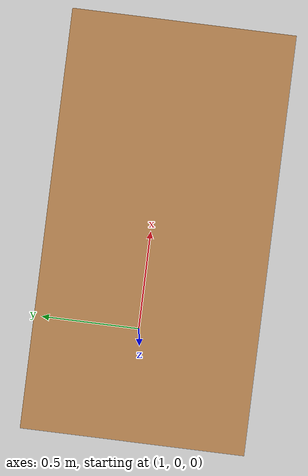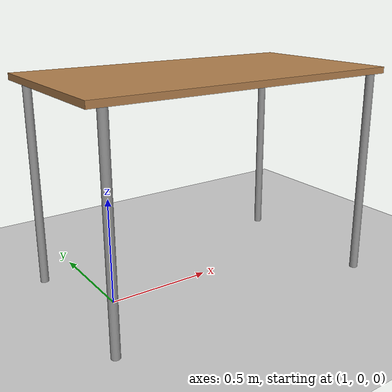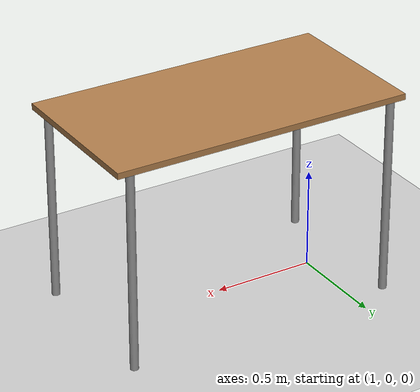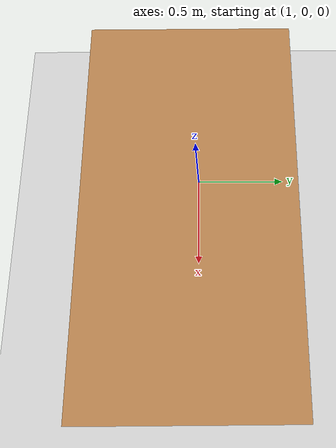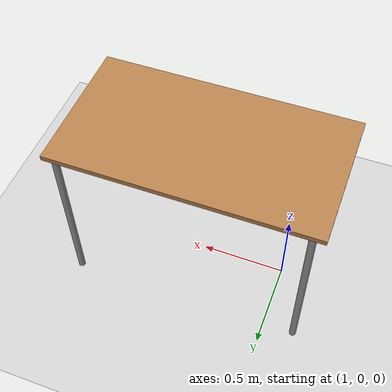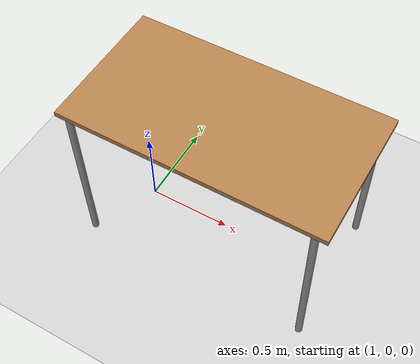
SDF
<?xml version="1.0" ?>
<sdf version="1.4">
  <world name="default">
    <!-- A global light source -->
    <include>
      <uri>model://sun</uri>
    </include>
    <!-- A ground plane -->
    <include>
      <uri>model://ground_plane</uri>
    </include>
    <include>
        <uri>model://table</uri>
        <name>table</name>
        <pose>1.5 0 0 0 0 0</pose>
    </include>
    <!-- Own physics settings to speed up simulation -->
    <physics type='ode'>
      <max_step_size>0.01</max_step_size>
      <real_time_factor>1</real_time_factor>
      <real_time_update_rate>100</real_time_update_rate>
      <gravity>0 0 -9.8</gravity>
    </physics>
  </world>
</sdf>

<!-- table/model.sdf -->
<sdf version="1.5">
  <model name="table">
    <static>true</static>
    <link name="link">
      <collision name="surface">
        <pose>0 0 1.0 0 0 0</pose>
        <geometry>
          <box>
            <size>1.5 0.8 0.03</size>
          </box>
        </geometry>
        <surface>
          <friction>
            <ode>
              <mu>0.6</mu>
              <mu2>0.6</mu2>
            </ode>
          </friction>
        </surface>
      </collision>
      <visual name="visual1">
        <pose>0 0 1.0 0 0 0</pose>
        <geometry>
          <box>
            <size>1.5 0.8 0.03</size>
          </box>
        </geometry>
        <material>
          <script>
            <uri>model://media/materials/scripts/gazebo.material</uri>
            <name>Gazebo/Wood</name>
          </script>
        </material>
      </visual>
      <collision name="front_left_leg">
        <pose>0.68 0.38 0.5 0 0 0</pose>
        <geometry>
          <cylinder>
            <radius>0.02</radius>
            <length>1.0</length>
          </cylinder>
        </geometry>
      </collision>
      <visual name="front_left_leg">
        <pose>0.68 0.38 0.5 0 0 0</pose>
        <geometry>
          <cylinder>
            <radius>0.02</radius>
            <length>1.0</length>
          </cylinder>
        </geometry>
        <material>
          <script>
            <uri>model://media/materials/scripts/gazebo.material</uri>
            <name>Gazebo/Grey</name>
          </script>
        </material>
      </visual>
      <collision name="front_right_leg">
        <pose>0.68 -0.38 0.5 0 0 0</pose>
        <geometry>
          <cylinder>
            <radius>0.02</radius>
            <length>1.0</length>
          </cylinder>
        </geometry>
      </collision>
      <visual name="front_right_leg">
        <pose>0.68 -0.38 0.5 0 0 0</pose>
        <geometry>
          <cylinder>
            <radius>0.02</radius>
            <length>1.0</length>
          </cylinder>
        </geometry>
        <material>
          <script>
            <uri>model://media/materials/scripts/gazebo.material</uri>
            <name>Gazebo/Grey</name>
          </script>
        </material>
      </visual>
      <collision name="back_right_leg">
        <pose>-0.68 -0.38 0.5 0 0 0</pose>
        <geometry>
          <cylinder>
            <radius>0.02</radius>
            <length>1.0</length>
          </cylinder>
        </geometry>
      </collision>
      <visual name="back_right_leg">
        <pose>-0.68 -0.38 0.5 0 0 0</pose>
        <geometry>
          <cylinder>
            <radius>0.02</radius>
            <length>1.0</length>
          </cylinder>
        </geometry>
        <material>
          <script>
            <uri>model://media/materials/scripts/gazebo.material</uri>
            <name>Gazebo/Grey</name>
          </script>
        </material>
      </visual>
      <collision name="back_left_leg">
        <pose>-0.68 0.38 0.5 0 0 0</pose>
        <geometry>
          <cylinder>
            <radius>0.02</radius>
            <length>1.0</length>
          </cylinder>
        </geometry>
      </collision>
      <visual name="back_left_leg">
        <pose>-0.68 0.38 0.5 0 0 0</pose>
        <geometry>
          <cylinder>
            <radius>0.02</radius>
            <length>1.0</length>
          </cylinder>
        </geometry>
        <material>
          <script>
            <uri>model://media/materials/scripts/gazebo.material</uri>
            <name>Gazebo/Grey</name>
          </script>
        </material>
      </visual>
    </link>
  </model>
</sdf>
